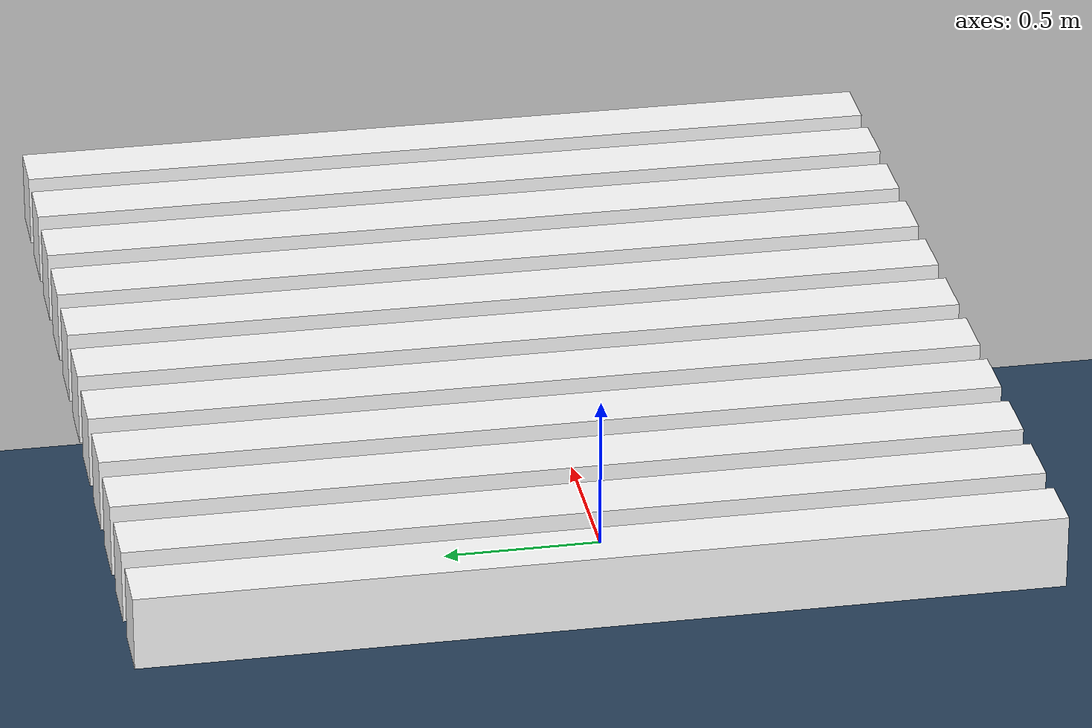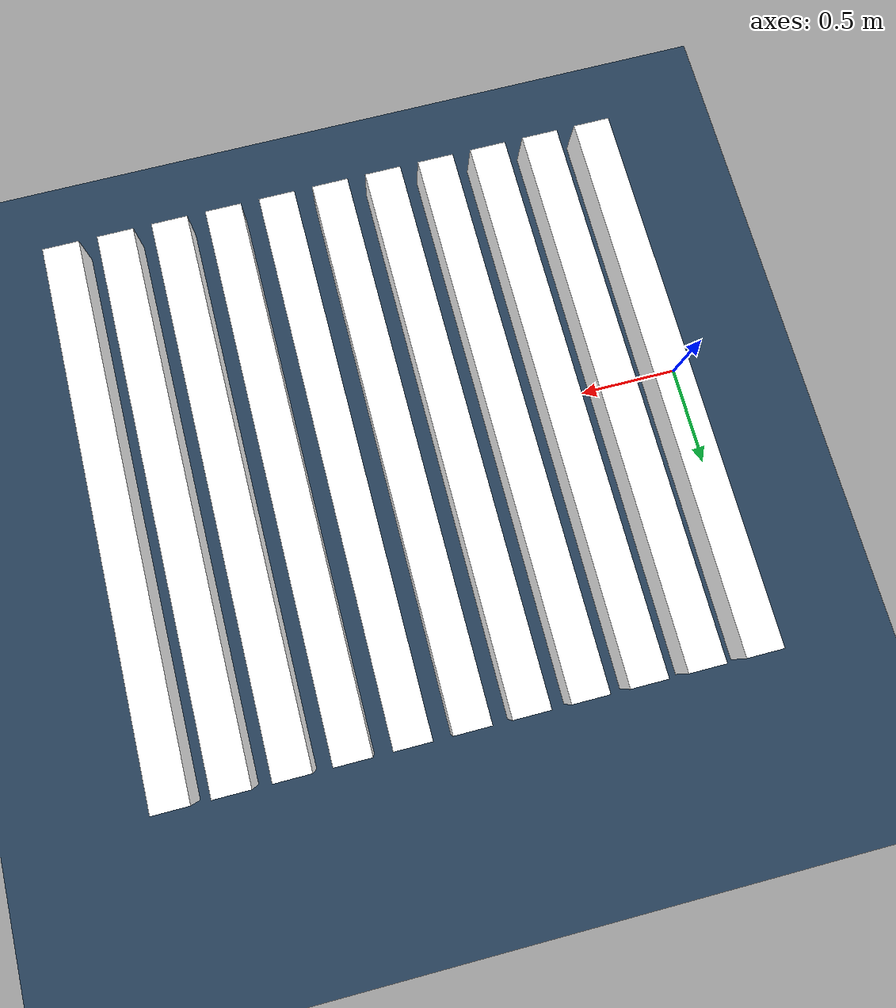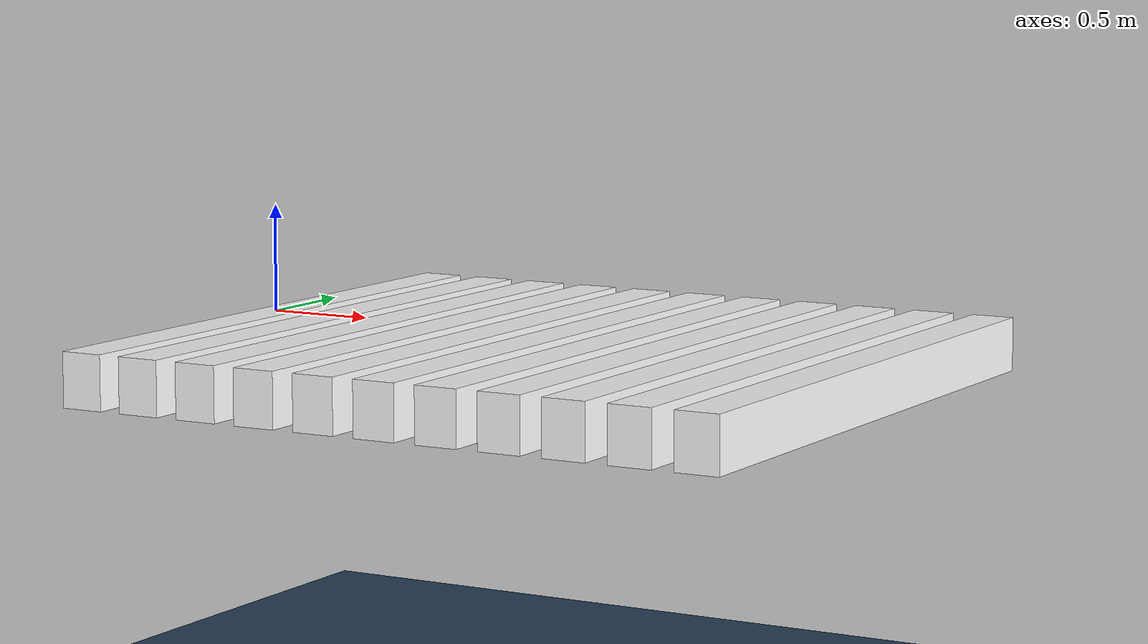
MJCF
<mujoco model="stepping_stones">
  <option gravity="0 0 -9.81"/>

  <statistic center="1.0 0.7 1.0" extent="0.8"/>

  <visual>
    <headlight diffuse="0.6 0.6 0.6" ambient="0.1 0.1 0.1" specular="0.9 0.9 0.9"/>
    <rgba haze="0.15 0.25 0.35 1"/>
    <global azimuth="-140" elevation="-20"/>
  </visual>

  <asset>
    <texture type="skybox" builtin="flat" rgb1="0 0 0" rgb2="0 0 0" width="512" height="3072"/>
    <texture type="2d" name="groundplane" builtin="checker" mark="edge" rgb1="0.2 0.3 0.4" rgb2="0.1 0.2 0.3" markrgb="0.8 0.8 0.8" width="300" height="300"/>
    <material name="groundplane" texture="groundplane" texuniform="true" texrepeat="5 5" reflectance="0.2"/>
    <material name="box_material" shininess="0.1" specular="0.5" roughness="0.3"/>
  </asset>

  <worldbody>
    <light pos="1 0 3.5" dir="0 0 -1" directional="true"/>

    <!-- Ground plane at z = -2m -->
    <geom name="floor" size="0 0 0.05" type="plane" material="groundplane" pos="0 0 -2" group="2"/>

    <!-- Stone 0: centered at x=0, y=0 -->
    <geom name="stone_0" type="box" pos="0.0 0 -0.125" size="0.1 1.5 0.125" material="box_material" group="2"/>

    <!-- Stone 1: x = 0.3m -->
    <geom name="stone_1" type="box" pos="0.3 0 -0.125" size="0.1 1.5 0.125" material="box_material" group="2"/>

    <!-- Stone 2: x = 0.6m -->
    <geom name="stone_2" type="box" pos="0.6 0 -0.125" size="0.1 1.5 0.125" material="box_material" group="2"/>

    <!-- Stone 3: x = 0.9m -->
    <geom name="stone_3" type="box" pos="0.9 0 -0.125" size="0.1 1.5 0.125" material="box_material" group="2"/>

    <!-- Stone 4: x = 1.2m -->
    <geom name="stone_4" type="box" pos="1.2 0 -0.125" size="0.1 1.5 0.125" material="box_material" group="2"/>

    <!-- Stone 5: x = 1.5m -->
    <geom name="stone_5" type="box" pos="1.5 0 -0.125" size="0.1 1.5 0.125" material="box_material" group="2"/>

    <!-- Stone 6: x = 1.8m -->
    <geom name="stone_6" type="box" pos="1.8 0 -0.125" size="0.1 1.5 0.125" material="box_material" group="2"/>

    <!-- Stone 7: x = 2.1m -->
    <geom name="stone_7" type="box" pos="2.1 0 -0.125" size="0.1 1.5 0.125" material="box_material" group="2"/>

    <!-- Stone 8: x = 2.4m -->
    <geom name="stone_8" type="box" pos="2.4 0 -0.125" size="0.1 1.5 0.125" material="box_material" group="2"/>

    <!-- Stone 9: x = 2.7m -->
    <geom name="stone_9" type="box" pos="2.7 0 -0.125" size="0.1 1.5 0.125" material="box_material" group="2"/>

    <!-- Stone 10: x = 3.0m -->
    <geom name="stone_10" type="box" pos="3.0 0 -0.125" size="0.1 1.5 0.125" material="box_material" group="2"/>
  </worldbody>
</mujoco>
